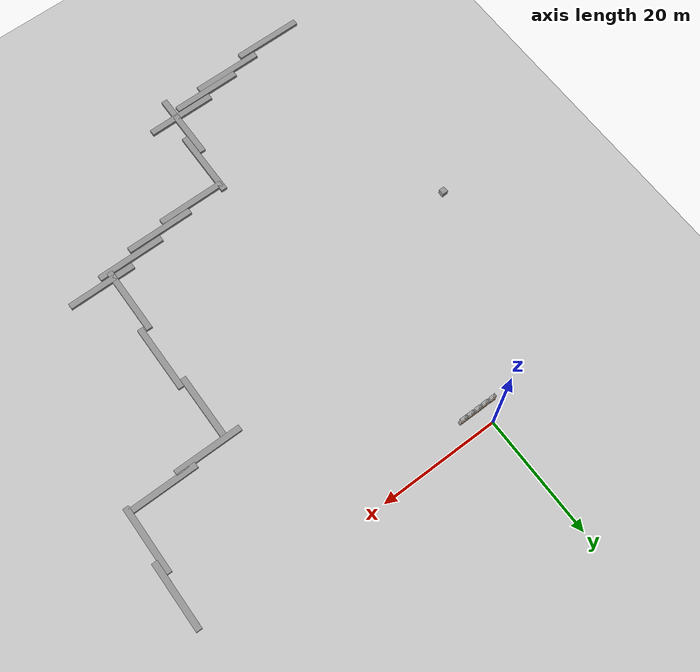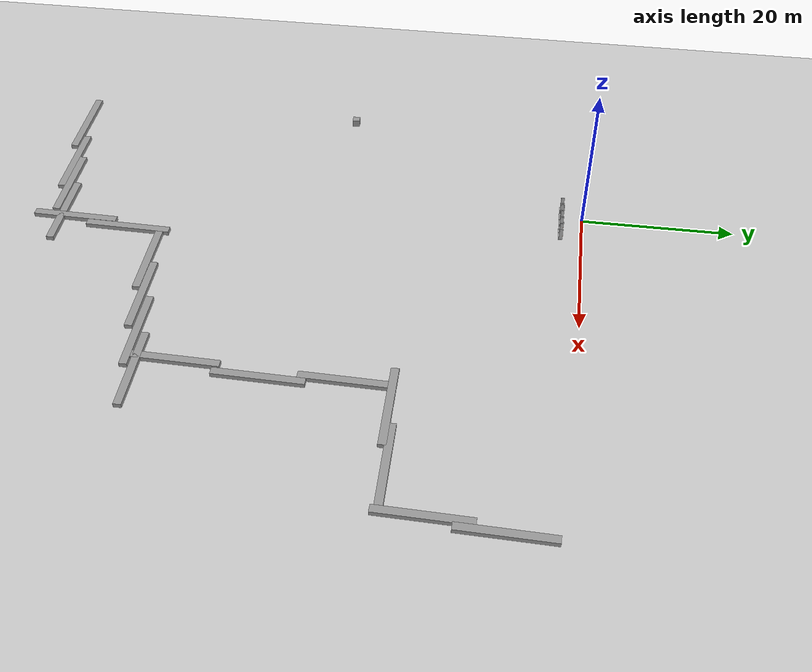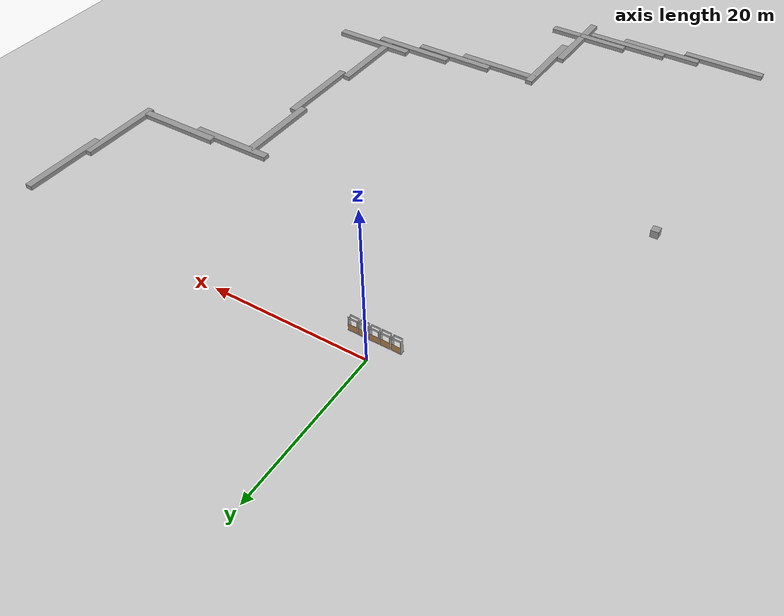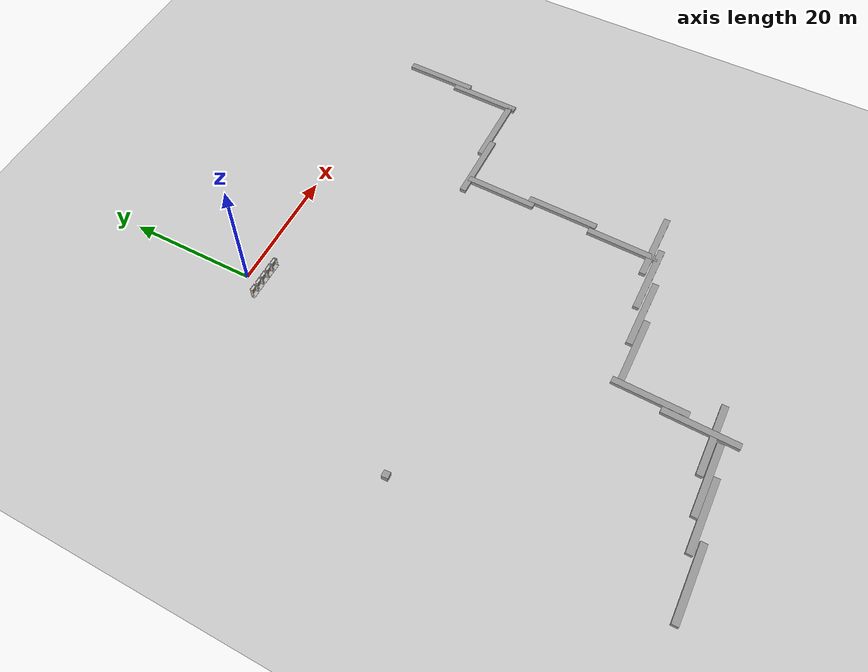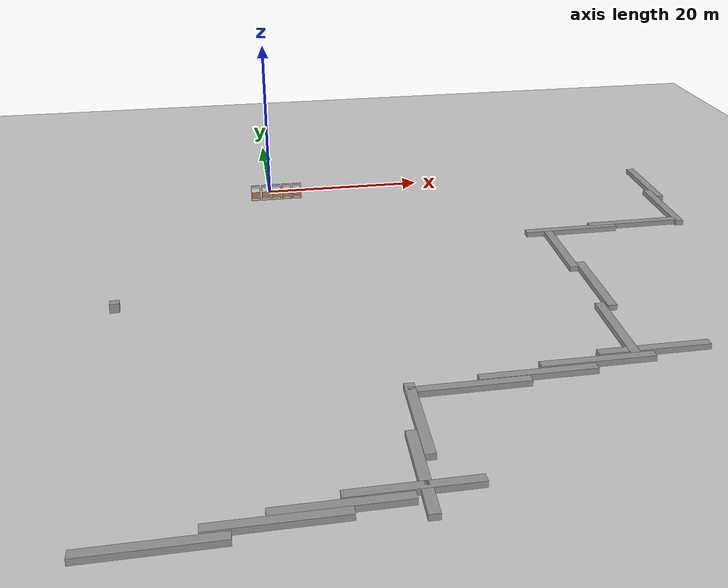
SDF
<sdf version="1.6">
 <world name="default">
  <model name="ground_plane">
   <static>1</static>
   <link name="link">
    <collision name="collision">
     <geometry><plane><normal>0 0 1</normal><size>100 100</size></plane></geometry>
     <surface><friction><ode><mu>100</mu><mu2>50</mu2></ode></friction></surface>
    </collision>
    <visual name="visual">
     <cast_shadows>0</cast_shadows>
     <geometry><plane><normal>0 0 1</normal><size>100 100</size></plane></geometry>
     <material>
      <script><uri>file://media/materials/scripts/gazebo.material</uri><name>Gazebo/Grey</name></script>
     </material>
    </visual>
   </link>
  </model>
  <model name="frc2016_drawbridge">
   <link name="base">
    <inertial>
     <mass>10</mass>
     <pose>0 0 1 0 -0 0</pose>
     <inertia><ixx>3.64907</ixx><ixy>0</ixy><ixz>0</ixz><iyy>4.67075</iyy><iyz>0</iyz><izz>1.66649</izz></inertia>
    </inertial>
    <visual name="platform">
     <pose>0 0 0.0425 0 -0 0</pose>
     <geometry><box><size>1.27 0.5969 0.085</size></box></geometry>
    </visual>
    <collision name="platform">
     <pose>0 0 0.0425 0 -0 0</pose>
     <geometry><box><size>1.27 0.5969 0.085</size></box></geometry>
    </collision>
    <visual name="right_wall">
     <pose>0.55879 0.04444 0.889 0 -0 0</pose>
     <geometry><box><size>0.05715 0.45698 1.77165</size></box></geometry>
    </visual>
    <collision name="right_wall">
     <pose>0.55879 0.04444 0.889 0 -0 0</pose>
     <geometry><box><size>0.05715 0.45698 1.77165</size></box></geometry>
    </collision>
    <visual name="left_wall">
     <pose>-0.55879 0.04444 0.889 0 -0 0</pose>
     <geometry><box><size>0.05715 0.45698 1.77165</size></box></geometry>
    </visual>
    <collision name="left_wall">
     <pose>-0.55879 0.04444 0.889 0 -0 0</pose>
     <geometry><box><size>0.05715 0.45698 1.77165</size></box></geometry>
    </collision>
    <visual name="front_upper_wall">
     <pose>0 0.27611 1.84286 0 -0 0</pose>
     <geometry><box><size>1.1557 0.006347 0.254</size></box></geometry>
    </visual>
    <collision name="front_upper_wall">
     <pose>0 0.27611 1.84286 0 -0 0</pose>
     <geometry><box><size>1.1557 0.006347 0.254</size></box></geometry>
    </collision>
    <visual name="back_upper_wall">
     <pose>0 -0.18722 1.84286 0 -0 0</pose>
     <geometry><box><size>1.1557 0.006347 0.254</size></box></geometry>
    </visual>
    <collision name="back_upper_wall">
     <pose>0 -0.18722 1.84286 0 -0 0</pose>
     <geometry><box><size>1.1557 0.006347 0.254</size></box></geometry>
    </collision>
   </link>
   <link name="bridge">
    <pose>0 0.28245 0.50577 0 -0 0</pose>
    <inertial>
     <mass>2</mass>
     <pose>0 -0.28245 -0.50577 0 -0 0</pose>
     <inertia>
      <ixx>0.139361</ixx>
      <ixy>0</ixy>
      <ixz>0</ixz>
      <iyy>0.357088</iyy>
      <iyz>0</iyz>
      <izz>0.217741</izz>
     </inertia>
    </inertial>
    <visual name="visual">
     <geometry><box><size>1.14298 0.006347 0.9144</size></box></geometry>
     <material><script><name>Gazebo/WoodFloor</name><uri>__default__</uri></script></material>
    </visual>
    <collision name="collision"><geometry><box><size>1.14298 0.006347 0.9144</size></box></geometry></collision>
   </link>
   <joint name="bridge_joint" type="revolute">
    <pose>0 0 -0.4172 0 -0 0</pose>
    <parent>base</parent>
    <child>bridge</child>
    <axis>
     <xyz>1 0 0</xyz>
     <limit><lower>-2</lower><upper>0</upper></limit>
     <use_parent_model_frame>0</use_parent_model_frame>
     <dynamics><spring_reference>0</spring_reference><spring_stiffness>0</spring_stiffness></dynamics>
    </axis>
   </joint>
   <pose>-1.96364 -2.76284 -3e-06 -1e-06 -4e-06 -0.011689</pose>
  </model>
  <model name="frc2016_drawbridge_clone_0">
   <link name="base">
    <inertial>
     <mass>10</mass>
     <pose>0 0 1 0 -0 0</pose>
     <inertia><ixx>3.64907</ixx><ixy>0</ixy><ixz>0</ixz><iyy>4.67075</iyy><iyz>0</iyz><izz>1.66649</izz></inertia>
    </inertial>
    <visual name="platform">
     <pose>0 0 0.0425 0 -0 0</pose>
     <geometry><box><size>1.27 0.5969 0.085</size></box></geometry>
    </visual>
    <collision name="platform">
     <pose>0 0 0.0425 0 -0 0</pose>
     <geometry><box><size>1.27 0.5969 0.085</size></box></geometry>
    </collision>
    <visual name="right_wall">
     <pose>0.55879 0.04444 0.889 0 -0 0</pose>
     <geometry><box><size>0.05715 0.45698 1.77165</size></box></geometry>
    </visual>
    <collision name="right_wall">
     <pose>0.55879 0.04444 0.889 0 -0 0</pose>
     <geometry><box><size>0.05715 0.45698 1.77165</size></box></geometry>
    </collision>
    <visual name="left_wall">
     <pose>-0.55879 0.04444 0.889 0 -0 0</pose>
     <geometry><box><size>0.05715 0.45698 1.77165</size></box></geometry>
    </visual>
    <collision name="left_wall">
     <pose>-0.55879 0.04444 0.889 0 -0 0</pose>
     <geometry><box><size>0.05715 0.45698 1.77165</size></box></geometry>
    </collision>
    <visual name="front_upper_wall">
     <pose>0 0.27611 1.84286 0 -0 0</pose>
     <geometry><box><size>1.1557 0.006347 0.254</size></box></geometry>
    </visual>
    <collision name="front_upper_wall">
     <pose>0 0.27611 1.84286 0 -0 0</pose>
     <geometry><box><size>1.1557 0.006347 0.254</size></box></geometry>
    </collision>
    <visual name="back_upper_wall">
     <pose>0 -0.18722 1.84286 0 -0 0</pose>
     <geometry><box><size>1.1557 0.006347 0.254</size></box></geometry>
    </visual>
    <collision name="back_upper_wall">
     <pose>0 -0.18722 1.84286 0 -0 0</pose>
     <geometry><box><size>1.1557 0.006347 0.254</size></box></geometry>
    </collision>
   </link>
   <link name="bridge">
    <pose>0 0.28245 0.50577 0 -0 0</pose>
    <inertial>
     <mass>2</mass>
     <pose>0 -0.28245 -0.50577 0 -0 0</pose>
     <inertia>
      <ixx>0.139361</ixx>
      <ixy>0</ixy>
      <ixz>0</ixz>
      <iyy>0.357088</iyy>
      <iyz>0</iyz>
      <izz>0.217741</izz>
     </inertia>
    </inertial>
    <visual name="visual">
     <geometry><box><size>1.14298 0.006347 0.9144</size></box></geometry>
     <material><script><name>Gazebo/WoodFloor</name><uri>__default__</uri></script></material>
    </visual>
    <collision name="collision"><geometry><box><size>1.14298 0.006347 0.9144</size></box></geometry></collision>
   </link>
   <joint name="bridge_joint" type="revolute">
    <pose>0 0 -0.4172 0 -0 0</pose>
    <parent>base</parent>
    <child>bridge</child>
    <axis>
     <xyz>1 0 0</xyz>
     <limit><lower>-2</lower><upper>0</upper></limit>
     <use_parent_model_frame>0</use_parent_model_frame>
     <dynamics><spring_reference>0</spring_reference><spring_stiffness>0</spring_stiffness></dynamics>
    </axis>
   </joint>
   <pose>-0.58277 -2.76867 -3e-06 -3e-06 -4e-06 0.003704</pose>
  </model>
  <model name="frc2016_drawbridge_clone_1">
   <link name="base">
    <inertial>
     <mass>10</mass>
     <pose>0 0 1 0 -0 0</pose>
     <inertia><ixx>3.64907</ixx><ixy>0</ixy><ixz>0</ixz><iyy>4.67075</iyy><iyz>0</iyz><izz>1.66649</izz></inertia>
    </inertial>
    <visual name="platform">
     <pose>0 0 0.0425 0 -0 0</pose>
     <geometry><box><size>1.27 0.5969 0.085</size></box></geometry>
    </visual>
    <collision name="platform">
     <pose>0 0 0.0425 0 -0 0</pose>
     <geometry><box><size>1.27 0.5969 0.085</size></box></geometry>
    </collision>
    <visual name="right_wall">
     <pose>0.55879 0.04444 0.889 0 -0 0</pose>
     <geometry><box><size>0.05715 0.45698 1.77165</size></box></geometry>
    </visual>
    <collision name="right_wall">
     <pose>0.55879 0.04444 0.889 0 -0 0</pose>
     <geometry><box><size>0.05715 0.45698 1.77165</size></box></geometry>
    </collision>
    <visual name="left_wall">
     <pose>-0.55879 0.04444 0.889 0 -0 0</pose>
     <geometry><box><size>0.05715 0.45698 1.77165</size></box></geometry>
    </visual>
    <collision name="left_wall">
     <pose>-0.55879 0.04444 0.889 0 -0 0</pose>
     <geometry><box><size>0.05715 0.45698 1.77165</size></box></geometry>
    </collision>
    <visual name="front_upper_wall">
     <pose>0 0.27611 1.84286 0 -0 0</pose>
     <geometry><box><size>1.1557 0.006347 0.254</size></box></geometry>
    </visual>
    <collision name="front_upper_wall">
     <pose>0 0.27611 1.84286 0 -0 0</pose>
     <geometry><box><size>1.1557 0.006347 0.254</size></box></geometry>
    </collision>
    <visual name="back_upper_wall">
     <pose>0 -0.18722 1.84286 0 -0 0</pose>
     <geometry><box><size>1.1557 0.006347 0.254</size></box></geometry>
    </visual>
    <collision name="back_upper_wall">
     <pose>0 -0.18722 1.84286 0 -0 0</pose>
     <geometry><box><size>1.1557 0.006347 0.254</size></box></geometry>
    </collision>
   </link>
   <link name="bridge">
    <pose>0 0.28245 0.50577 0 -0 0</pose>
    <inertial>
     <mass>2</mass>
     <pose>0 -0.28245 -0.50577 0 -0 0</pose>
     <inertia>
      <ixx>0.139361</ixx>
      <ixy>0</ixy>
      <ixz>0</ixz>
      <iyy>0.357088</iyy>
      <iyz>0</iyz>
      <izz>0.217741</izz>
     </inertia>
    </inertial>
    <visual name="visual">
     <geometry><box><size>1.14298 0.006347 0.9144</size></box></geometry>
     <material><script><name>Gazebo/WoodFloor</name><uri>__default__</uri></script></material>
    </visual>
    <collision name="collision"><geometry><box><size>1.14298 0.006347 0.9144</size></box></geometry></collision>
   </link>
   <joint name="bridge_joint" type="revolute">
    <pose>0 0 -0.4172 0 -0 0</pose>
    <parent>base</parent>
    <child>bridge</child>
    <axis>
     <xyz>1 0 0</xyz>
     <limit><lower>-2</lower><upper>0</upper></limit>
     <use_parent_model_frame>0</use_parent_model_frame>
     <dynamics><spring_reference>0</spring_reference><spring_stiffness>0</spring_stiffness></dynamics>
    </axis>
   </joint>
   <pose>0.751563 -2.76216 -3e-06 -2e-06 -4e-06 -0.003048</pose>
  </model>
  <model name="frc2016_drawbridge_clone_2">
   <link name="base">
    <inertial>
     <mass>10</mass>
     <pose>0 0 1 0 -0 0</pose>
     <inertia><ixx>3.64907</ixx><ixy>0</ixy><ixz>0</ixz><iyy>4.67075</iyy><iyz>0</iyz><izz>1.66649</izz></inertia>
    </inertial>
    <visual name="platform">
     <pose>0 0 0.0425 0 -0 0</pose>
     <geometry><box><size>1.27 0.5969 0.085</size></box></geometry>
    </visual>
    <collision name="platform">
     <pose>0 0 0.0425 0 -0 0</pose>
     <geometry><box><size>1.27 0.5969 0.085</size></box></geometry>
    </collision>
    <visual name="right_wall">
     <pose>0.55879 0.04444 0.889 0 -0 0</pose>
     <geometry><box><size>0.05715 0.45698 1.77165</size></box></geometry>
    </visual>
    <collision name="right_wall">
     <pose>0.55879 0.04444 0.889 0 -0 0</pose>
     <geometry><box><size>0.05715 0.45698 1.77165</size></box></geometry>
    </collision>
    <visual name="left_wall">
     <pose>-0.55879 0.04444 0.889 0 -0 0</pose>
     <geometry><box><size>0.05715 0.45698 1.77165</size></box></geometry>
    </visual>
    <collision name="left_wall">
     <pose>-0.55879 0.04444 0.889 0 -0 0</pose>
     <geometry><box><size>0.05715 0.45698 1.77165</size></box></geometry>
    </collision>
    <visual name="front_upper_wall">
     <pose>0 0.27611 1.84286 0 -0 0</pose>
     <geometry><box><size>1.1557 0.006347 0.254</size></box></geometry>
    </visual>
    <collision name="front_upper_wall">
     <pose>0 0.27611 1.84286 0 -0 0</pose>
     <geometry><box><size>1.1557 0.006347 0.254</size></box></geometry>
    </collision>
    <visual name="back_upper_wall">
     <pose>0 -0.18722 1.84286 0 -0 0</pose>
     <geometry><box><size>1.1557 0.006347 0.254</size></box></geometry>
    </visual>
    <collision name="back_upper_wall">
     <pose>0 -0.18722 1.84286 0 -0 0</pose>
     <geometry><box><size>1.1557 0.006347 0.254</size></box></geometry>
    </collision>
   </link>
   <link name="bridge">
    <pose>0 0.28245 0.50577 0 -0 0</pose>
    <inertial>
     <mass>2</mass>
     <pose>0 -0.28245 -0.50577 0 -0 0</pose>
     <inertia>
      <ixx>0.139361</ixx>
      <ixy>0</ixy>
      <ixz>0</ixz>
      <iyy>0.357088</iyy>
      <iyz>0</iyz>
      <izz>0.217741</izz>
     </inertia>
    </inertial>
    <visual name="visual">
     <geometry><box><size>1.14298 0.006347 0.9144</size></box></geometry>
     <material><script><name>Gazebo/WoodFloor</name><uri>__default__</uri></script></material>
    </visual>
    <collision name="collision"><geometry><box><size>1.14298 0.006347 0.9144</size></box></geometry></collision>
   </link>
   <joint name="bridge_joint" type="revolute">
    <pose>0 0 -0.4172 0 -0 0</pose>
    <parent>base</parent>
    <child>bridge</child>
    <axis>
     <xyz>1 0 0</xyz>
     <limit><lower>-2</lower><upper>0</upper></limit>
     <use_parent_model_frame>0</use_parent_model_frame>
     <dynamics><spring_reference>0</spring_reference><spring_stiffness>0</spring_stiffness></dynamics>
    </axis>
   </joint>
   <pose>2.09359 -2.76255 0 0 -0 0.006067</pose>
  </model>
  <model name="frc2016_drawbridge_clone_3">
   <link name="base">
    <inertial>
     <mass>10</mass>
     <pose>0 0 1 0 -0 0</pose>
     <inertia><ixx>3.64907</ixx><ixy>0</ixy><ixz>0</ixz><iyy>4.67075</iyy><iyz>0</iyz><izz>1.66649</izz></inertia>
    </inertial>
    <visual name="platform">
     <pose>0 0 0.0425 0 -0 0</pose>
     <geometry><box><size>1.27 0.5969 0.085</size></box></geometry>
    </visual>
    <collision name="platform">
     <pose>0 0 0.0425 0 -0 0</pose>
     <geometry><box><size>1.27 0.5969 0.085</size></box></geometry>
    </collision>
    <visual name="right_wall">
     <pose>0.55879 0.04444 0.889 0 -0 0</pose>
     <geometry><box><size>0.05715 0.45698 1.77165</size></box></geometry>
    </visual>
    <collision name="right_wall">
     <pose>0.55879 0.04444 0.889 0 -0 0</pose>
     <geometry><box><size>0.05715 0.45698 1.77165</size></box></geometry>
    </collision>
    <visual name="left_wall">
     <pose>-0.55879 0.04444 0.889 0 -0 0</pose>
     <geometry><box><size>0.05715 0.45698 1.77165</size></box></geometry>
    </visual>
    <collision name="left_wall">
     <pose>-0.55879 0.04444 0.889 0 -0 0</pose>
     <geometry><box><size>0.05715 0.45698 1.77165</size></box></geometry>
    </collision>
    <visual name="front_upper_wall">
     <pose>0 0.27611 1.84286 0 -0 0</pose>
     <geometry><box><size>1.1557 0.006347 0.254</size></box></geometry>
    </visual>
    <collision name="front_upper_wall">
     <pose>0 0.27611 1.84286 0 -0 0</pose>
     <geometry><box><size>1.1557 0.006347 0.254</size></box></geometry>
    </collision>
    <visual name="back_upper_wall">
     <pose>0 -0.18722 1.84286 0 -0 0</pose>
     <geometry><box><size>1.1557 0.006347 0.254</size></box></geometry>
    </visual>
    <collision name="back_upper_wall">
     <pose>0 -0.18722 1.84286 0 -0 0</pose>
     <geometry><box><size>1.1557 0.006347 0.254</size></box></geometry>
    </collision>
   </link>
   <link name="bridge">
    <pose>0 0.28245 0.50577 0 -0 0</pose>
    <inertial>
     <mass>2</mass>
     <pose>0 -0.28245 -0.50577 0 -0 0</pose>
     <inertia>
      <ixx>0.139361</ixx>
      <ixy>0</ixy>
      <ixz>0</ixz>
      <iyy>0.357088</iyy>
      <iyz>0</iyz>
      <izz>0.217741</izz>
     </inertia>
    </inertial>
    <visual name="visual">
     <geometry><box><size>1.14298 0.006347 0.9144</size></box></geometry>
     <material><script><name>Gazebo/WoodFloor</name><uri>__default__</uri></script></material>
    </visual>
    <collision name="collision"><geometry><box><size>1.14298 0.006347 0.9144</size></box></geometry></collision>
   </link>
   <joint name="bridge_joint" type="revolute">
    <pose>0 0 -0.4172 0 -0 0</pose>
    <parent>base</parent>
    <child>bridge</child>
    <axis>
     <xyz>1 0 0</xyz>
     <limit><lower>-2</lower><upper>0</upper></limit>
     <use_parent_model_frame>0</use_parent_model_frame>
     <dynamics><spring_reference>0</spring_reference><spring_stiffness>0</spring_stiffness></dynamics>
    </axis>
   </joint>
   <pose>3.4132 -2.77332 0 0 0 -0.005096</pose>
  </model>
  <model name="unit_box_0_clone_14_clone_0_clone">
   <pose>-17.7844 -33.4735 0.509209 -0.000175 -8e-05 0.023709</pose>
   <link name="link">
    <inertial>
     <mass>1</mass>
     <inertia>
      <ixx>0.166667</ixx>
      <ixy>0</ixy>
      <ixz>0</ixz>
      <iyy>0.166667</iyy>
      <iyz>0</iyz>
      <izz>0.166667</izz>
     </inertia>
    </inertial>
    <collision name="collision"><geometry><box><size>1 1 1</size></box></geometry></collision>
    <visual name="visual">
     <geometry><box><size>1 1 1</size></box></geometry>
     <material>
      <script><name>Gazebo/Grey</name><uri>file://media/materials/scripts/gazebo.material</uri></script>
     </material>
    </visual>
   </link>
  </model>
  <model name="unit_box_0_static_clone_7">
   <link name="link">
    <inertial>
     <mass>11.3696</mass>
     <inertia><ixx>1.89495</ixx><ixy>0</ixy><ixz>0</ixz><iyy>123.426</iyy><iyz>0</iyz><izz>123.426</izz></inertia>
    </inertial>
    <kinematic>1</kinematic>
    <visual name="visual">
     <geometry><box><size>11.3696 1 1</size></box></geometry>
     <material>
      <script><name>Gazebo/Grey</name><uri>file://media/materials/scripts/gazebo.material</uri></script>
      <ambient>0.3 0.3 0.3 1</ambient>
      <diffuse>0.7 0.7 0.7 1</diffuse>
      <specular>0.01 0.01 0.01 1</specular>
      <emissive>0 0 0 1</emissive>
     </material>
    </visual>
    <collision name="collision">
     <geometry><box><size>11.3696 1 1</size></box></geometry>
     <surface>
      <friction>
       <ode><mu>1</mu><mu2>1</mu2><fdir1>0 0 0</fdir1><slip1>0</slip1><slip2>0</slip2></ode>
       <torsional>
        <coefficient>1</coefficient>
        <patch_radius>0</patch_radius>
        <surface_radius>0</surface_radius>
        <use_patch_radius>1</use_patch_radius>
        <ode><slip>0</slip></ode>
       </torsional>
      </friction>
      <bounce><restitution_coefficient>0</restitution_coefficient><threshold>1e+06</threshold></bounce>
      <contact>
       <collide_without_contact>0</collide_without_contact>
       <collide_without_contact_bitmask>1</collide_without_contact_bitmask>
       <collide_bitmask>1</collide_bitmask>
       <ode>
        <soft_cfm>0</soft_cfm>
        <soft_erp>0.2</soft_erp>
        <kp>1e+13</kp>
        <kd>1</kd>
        <max_vel>0.01</max_vel>
        <min_depth>0</min_depth>
       </ode>
       <bullet>
        <split_impulse>1</split_impulse>
        <split_impulse_penetration_threshold>-0.01</split_impulse_penetration_threshold>
        <soft_cfm>0</soft_cfm>
        <soft_erp>0.2</soft_erp>
        <kp>1e+13</kp>
        <kd>1</kd>
       </bullet>
      </contact>
     </surface>
    </collision>
   </link>
   <static>1</static>
   <pose>-12.4313 -73.084 0 0 -0 0</pose>
  </model>
  <model name="unit_box_0_static_clone_8">
   <link name="link">
    <inertial>
     <mass>11.3696</mass>
     <inertia><ixx>1.89495</ixx><ixy>0</ixy><ixz>0</ixz><iyy>123.426</iyy><iyz>0</iyz><izz>123.426</izz></inertia>
    </inertial>
    <kinematic>1</kinematic>
    <visual name="visual">
     <geometry><box><size>11.3696 1 1</size></box></geometry>
     <material>
      <script><name>Gazebo/Grey</name><uri>file://media/materials/scripts/gazebo.material</uri></script>
      <ambient>0.3 0.3 0.3 1</ambient>
      <diffuse>0.7 0.7 0.7 1</diffuse>
      <specular>0.01 0.01 0.01 1</specular>
      <emissive>0 0 0 1</emissive>
     </material>
    </visual>
    <collision name="collision">
     <geometry><box><size>11.3696 1 1</size></box></geometry>
     <surface>
      <friction>
       <ode><mu>1</mu><mu2>1</mu2><fdir1>0 0 0</fdir1><slip1>0</slip1><slip2>0</slip2></ode>
       <torsional>
        <coefficient>1</coefficient>
        <patch_radius>0</patch_radius>
        <surface_radius>0</surface_radius>
        <use_patch_radius>1</use_patch_radius>
        <ode><slip>0</slip></ode>
       </torsional>
      </friction>
      <bounce><restitution_coefficient>0</restitution_coefficient><threshold>1e+06</threshold></bounce>
      <contact>
       <collide_without_contact>0</collide_without_contact>
       <collide_without_contact_bitmask>1</collide_without_contact_bitmask>
       <collide_bitmask>1</collide_bitmask>
       <ode>
        <soft_cfm>0</soft_cfm>
        <soft_erp>0.2</soft_erp>
        <kp>1e+13</kp>
        <kd>1</kd>
        <max_vel>0.01</max_vel>
        <min_depth>0</min_depth>
       </ode>
       <bullet>
        <split_impulse>1</split_impulse>
        <split_impulse_penetration_threshold>-0.01</split_impulse_penetration_threshold>
        <soft_cfm>0</soft_cfm>
        <soft_erp>0.2</soft_erp>
        <kp>1e+13</kp>
        <kd>1</kd>
       </bullet>
      </contact>
     </surface>
    </collision>
   </link>
   <static>1</static>
   <pose>-3.41606 -71.867 0 0 -0 0</pose>
  </model>
  <model name="unit_box_0_static_clone_9">
   <link name="link">
    <inertial>
     <mass>11.3696</mass>
     <inertia><ixx>1.89495</ixx><ixy>0</ixy><ixz>0</ixz><iyy>123.426</iyy><iyz>0</iyz><izz>123.426</izz></inertia>
    </inertial>
    <kinematic>1</kinematic>
    <visual name="visual">
     <geometry><box><size>11.3696 1 1</size></box></geometry>
     <material>
      <script><name>Gazebo/Grey</name><uri>file://media/materials/scripts/gazebo.material</uri></script>
      <ambient>0.3 0.3 0.3 1</ambient>
      <diffuse>0.7 0.7 0.7 1</diffuse>
      <specular>0.01 0.01 0.01 1</specular>
      <emissive>0 0 0 1</emissive>
     </material>
    </visual>
    <collision name="collision">
     <geometry><box><size>11.3696 1 1</size></box></geometry>
     <surface>
      <friction>
       <ode><mu>1</mu><mu2>1</mu2><fdir1>0 0 0</fdir1><slip1>0</slip1><slip2>0</slip2></ode>
       <torsional>
        <coefficient>1</coefficient>
        <patch_radius>0</patch_radius>
        <surface_radius>0</surface_radius>
        <use_patch_radius>1</use_patch_radius>
        <ode><slip>0</slip></ode>
       </torsional>
      </friction>
      <bounce><restitution_coefficient>0</restitution_coefficient><threshold>1e+06</threshold></bounce>
      <contact>
       <collide_without_contact>0</collide_without_contact>
       <collide_without_contact_bitmask>1</collide_without_contact_bitmask>
       <collide_bitmask>1</collide_bitmask>
       <ode>
        <soft_cfm>0</soft_cfm>
        <soft_erp>0.2</soft_erp>
        <kp>1e+13</kp>
        <kd>1</kd>
        <max_vel>0.01</max_vel>
        <min_depth>0</min_depth>
       </ode>
       <bullet>
        <split_impulse>1</split_impulse>
        <split_impulse_penetration_threshold>-0.01</split_impulse_penetration_threshold>
        <soft_cfm>0</soft_cfm>
        <soft_erp>0.2</soft_erp>
        <kp>1e+13</kp>
        <kd>1</kd>
       </bullet>
      </contact>
     </surface>
    </collision>
   </link>
   <static>1</static>
   <pose>1.44335 -70.8928 0 0 -0 0</pose>
  </model>
  <model name="unit_box_0_static_clone_10">
   <link name="link">
    <inertial>
     <mass>11.3696</mass>
     <inertia><ixx>1.89495</ixx><ixy>0</ixy><ixz>0</ixz><iyy>123.426</iyy><iyz>0</iyz><izz>123.426</izz></inertia>
    </inertial>
    <kinematic>1</kinematic>
    <visual name="visual">
     <geometry><box><size>11.3696 1 1</size></box></geometry>
     <material>
      <script><name>Gazebo/Grey</name><uri>file://media/materials/scripts/gazebo.material</uri></script>
      <ambient>0.3 0.3 0.3 1</ambient>
      <diffuse>0.7 0.7 0.7 1</diffuse>
      <specular>0.01 0.01 0.01 1</specular>
      <emissive>0 0 0 1</emissive>
     </material>
    </visual>
    <collision name="collision">
     <geometry><box><size>11.3696 1 1</size></box></geometry>
     <surface>
      <friction>
       <ode><mu>1</mu><mu2>1</mu2><fdir1>0 0 0</fdir1><slip1>0</slip1><slip2>0</slip2></ode>
       <torsional>
        <coefficient>1</coefficient>
        <patch_radius>0</patch_radius>
        <surface_radius>0</surface_radius>
        <use_patch_radius>1</use_patch_radius>
        <ode><slip>0</slip></ode>
       </torsional>
      </friction>
      <bounce><restitution_coefficient>0</restitution_coefficient><threshold>1e+06</threshold></bounce>
      <contact>
       <collide_without_contact>0</collide_without_contact>
       <collide_without_contact_bitmask>1</collide_without_contact_bitmask>
       <collide_bitmask>1</collide_bitmask>
       <ode>
        <soft_cfm>0</soft_cfm>
        <soft_erp>0.2</soft_erp>
        <kp>1e+13</kp>
        <kd>1</kd>
        <max_vel>0.01</max_vel>
        <min_depth>0</min_depth>
       </ode>
       <bullet>
        <split_impulse>1</split_impulse>
        <split_impulse_penetration_threshold>-0.01</split_impulse_penetration_threshold>
        <soft_cfm>0</soft_cfm>
        <soft_erp>0.2</soft_erp>
        <kp>1e+13</kp>
        <kd>1</kd>
       </bullet>
      </contact>
     </surface>
    </collision>
   </link>
   <static>1</static>
   <pose>7.15228 -69.7562 0 0 -0 0</pose>
  </model>
  <model name="unit_box_0_static_clone_11">
   <link name="link">
    <inertial>
     <mass>11.3696</mass>
     <inertia><ixx>1.89495</ixx><ixy>0</ixy><ixz>0</ixz><iyy>123.426</iyy><iyz>0</iyz><izz>123.426</izz></inertia>
    </inertial>
    <kinematic>1</kinematic>
    <visual name="visual">
     <geometry><box><size>11.3696 1 1</size></box></geometry>
     <material>
      <script><name>Gazebo/Grey</name><uri>file://media/materials/scripts/gazebo.material</uri></script>
      <ambient>0.3 0.3 0.3 1</ambient>
      <diffuse>0.7 0.7 0.7 1</diffuse>
      <specular>0.01 0.01 0.01 1</specular>
      <emissive>0 0 0 1</emissive>
     </material>
    </visual>
    <collision name="collision">
     <geometry><box><size>11.3696 1 1</size></box></geometry>
     <surface>
      <friction>
       <ode><mu>1</mu><mu2>1</mu2><fdir1>0 0 0</fdir1><slip1>0</slip1><slip2>0</slip2></ode>
       <torsional>
        <coefficient>1</coefficient>
        <patch_radius>0</patch_radius>
        <surface_radius>0</surface_radius>
        <use_patch_radius>1</use_patch_radius>
        <ode><slip>0</slip></ode>
       </torsional>
      </friction>
      <bounce><restitution_coefficient>0</restitution_coefficient><threshold>1e+06</threshold></bounce>
      <contact>
       <collide_without_contact>0</collide_without_contact>
       <collide_without_contact_bitmask>1</collide_without_contact_bitmask>
       <collide_bitmask>1</collide_bitmask>
       <ode>
        <soft_cfm>0</soft_cfm>
        <soft_erp>0.2</soft_erp>
        <kp>1e+13</kp>
        <kd>1</kd>
        <max_vel>0.01</max_vel>
        <min_depth>0</min_depth>
       </ode>
       <bullet>
        <split_impulse>1</split_impulse>
        <split_impulse_penetration_threshold>-0.01</split_impulse_penetration_threshold>
        <soft_cfm>0</soft_cfm>
        <soft_erp>0.2</soft_erp>
        <kp>1e+13</kp>
        <kd>1</kd>
       </bullet>
      </contact>
     </surface>
    </collision>
   </link>
   <static>1</static>
   <pose>35.508 -21.3768 0 0 -0 0</pose>
  </model>
  <model name="unit_box_0_static_clone_12">
   <link name="link">
    <inertial>
     <mass>11.3696</mass>
     <inertia><ixx>1.89495</ixx><ixy>0</ixy><ixz>0</ixz><iyy>123.426</iyy><iyz>0</iyz><izz>123.426</izz></inertia>
    </inertial>
    <kinematic>1</kinematic>
    <visual name="visual">
     <geometry><box><size>11.3696 1 1</size></box></geometry>
     <material>
      <script><name>Gazebo/Grey</name><uri>file://media/materials/scripts/gazebo.material</uri></script>
      <ambient>0.3 0.3 0.3 1</ambient>
      <diffuse>0.7 0.7 0.7 1</diffuse>
      <specular>0.01 0.01 0.01 1</specular>
      <emissive>0 0 0 1</emissive>
     </material>
    </visual>
    <collision name="collision">
     <geometry><box><size>11.3696 1 1</size></box></geometry>
     <surface>
      <friction>
       <ode><mu>1</mu><mu2>1</mu2><fdir1>0 0 0</fdir1><slip1>0</slip1><slip2>0</slip2></ode>
       <torsional>
        <coefficient>1</coefficient>
        <patch_radius>0</patch_radius>
        <surface_radius>0</surface_radius>
        <use_patch_radius>1</use_patch_radius>
        <ode><slip>0</slip></ode>
       </torsional>
      </friction>
      <bounce><restitution_coefficient>0</restitution_coefficient><threshold>1e+06</threshold></bounce>
      <contact>
       <collide_without_contact>0</collide_without_contact>
       <collide_without_contact_bitmask>1</collide_without_contact_bitmask>
       <collide_bitmask>1</collide_bitmask>
       <ode>
        <soft_cfm>0</soft_cfm>
        <soft_erp>0.2</soft_erp>
        <kp>1e+13</kp>
        <kd>1</kd>
        <max_vel>0.01</max_vel>
        <min_depth>0</min_depth>
       </ode>
       <bullet>
        <split_impulse>1</split_impulse>
        <split_impulse_penetration_threshold>-0.01</split_impulse_penetration_threshold>
        <soft_cfm>0</soft_cfm>
        <soft_erp>0.2</soft_erp>
        <kp>1e+13</kp>
        <kd>1</kd>
       </bullet>
      </contact>
     </surface>
    </collision>
   </link>
   <static>1</static>
   <pose>43.7314 -20.6313 0 0 -0 0</pose>
  </model>
  <model name="unit_box_0_static_clone_13">
   <link name="link">
    <inertial>
     <mass>11.3696</mass>
     <inertia><ixx>1.89495</ixx><ixy>0</ixy><ixz>0</ixz><iyy>123.426</iyy><iyz>0</iyz><izz>123.426</izz></inertia>
    </inertial>
    <kinematic>1</kinematic>
    <visual name="visual">
     <geometry><box><size>11.3696 1 1</size></box></geometry>
     <material>
      <script><name>Gazebo/Grey</name><uri>file://media/materials/scripts/gazebo.material</uri></script>
      <ambient>0.3 0.3 0.3 1</ambient>
      <diffuse>0.7 0.7 0.7 1</diffuse>
      <specular>0.01 0.01 0.01 1</specular>
      <emissive>0 0 0 1</emissive>
     </material>
    </visual>
    <collision name="collision">
     <geometry><box><size>11.3696 1 1</size></box></geometry>
     <surface>
      <friction>
       <ode><mu>1</mu><mu2>1</mu2><fdir1>0 0 0</fdir1><slip1>0</slip1><slip2>0</slip2></ode>
       <torsional>
        <coefficient>1</coefficient>
        <patch_radius>0</patch_radius>
        <surface_radius>0</surface_radius>
        <use_patch_radius>1</use_patch_radius>
        <ode><slip>0</slip></ode>
       </torsional>
      </friction>
      <bounce><restitution_coefficient>0</restitution_coefficient><threshold>1e+06</threshold></bounce>
      <contact>
       <collide_without_contact>0</collide_without_contact>
       <collide_without_contact_bitmask>1</collide_without_contact_bitmask>
       <collide_bitmask>1</collide_bitmask>
       <ode>
        <soft_cfm>0</soft_cfm>
        <soft_erp>0.2</soft_erp>
        <kp>1e+13</kp>
        <kd>1</kd>
        <max_vel>0.01</max_vel>
        <min_depth>0</min_depth>
       </ode>
       <bullet>
        <split_impulse>1</split_impulse>
        <split_impulse_penetration_threshold>-0.01</split_impulse_penetration_threshold>
        <soft_cfm>0</soft_cfm>
        <soft_erp>0.2</soft_erp>
        <kp>1e+13</kp>
        <kd>1</kd>
       </bullet>
      </contact>
     </surface>
    </collision>
   </link>
   <static>1</static>
   <pose>14.8401 -55.6737 0 0 -0 0</pose>
  </model>
  <model name="unit_box_0_static_clone_14">
   <link name="link">
    <inertial>
     <mass>11.3696</mass>
     <inertia><ixx>1.89495</ixx><ixy>0</ixy><ixz>0</ixz><iyy>123.426</iyy><iyz>0</iyz><izz>123.426</izz></inertia>
    </inertial>
    <kinematic>1</kinematic>
    <visual name="visual">
     <geometry><box><size>11.3696 1 1</size></box></geometry>
     <material>
      <script><name>Gazebo/Grey</name><uri>file://media/materials/scripts/gazebo.material</uri></script>
      <ambient>0.3 0.3 0.3 1</ambient>
      <diffuse>0.7 0.7 0.7 1</diffuse>
      <specular>0.01 0.01 0.01 1</specular>
      <emissive>0 0 0 1</emissive>
     </material>
    </visual>
    <collision name="collision">
     <geometry><box><size>11.3696 1 1</size></box></geometry>
     <surface>
      <friction>
       <ode><mu>1</mu><mu2>1</mu2><fdir1>0 0 0</fdir1><slip1>0</slip1><slip2>0</slip2></ode>
       <torsional>
        <coefficient>1</coefficient>
        <patch_radius>0</patch_radius>
        <surface_radius>0</surface_radius>
        <use_patch_radius>1</use_patch_radius>
        <ode><slip>0</slip></ode>
       </torsional>
      </friction>
      <bounce><restitution_coefficient>0</restitution_coefficient><threshold>1e+06</threshold></bounce>
      <contact>
       <collide_without_contact>0</collide_without_contact>
       <collide_without_contact_bitmask>1</collide_without_contact_bitmask>
       <collide_bitmask>1</collide_bitmask>
       <ode>
        <soft_cfm>0</soft_cfm>
        <soft_erp>0.2</soft_erp>
        <kp>1e+13</kp>
        <kd>1</kd>
        <max_vel>0.01</max_vel>
        <min_depth>0</min_depth>
       </ode>
       <bullet>
        <split_impulse>1</split_impulse>
        <split_impulse_penetration_threshold>-0.01</split_impulse_penetration_threshold>
        <soft_cfm>0</soft_cfm>
        <soft_erp>0.2</soft_erp>
        <kp>1e+13</kp>
        <kd>1</kd>
       </bullet>
      </contact>
     </surface>
    </collision>
   </link>
   <static>1</static>
   <pose>21.499 -54.6347 0 0 -0 0</pose>
  </model>
  <model name="unit_box_0_static_clone_15">
   <link name="link">
    <inertial>
     <mass>11.3696</mass>
     <inertia><ixx>1.89495</ixx><ixy>0</ixy><ixz>0</ixz><iyy>123.426</iyy><iyz>0</iyz><izz>123.426</izz></inertia>
    </inertial>
    <kinematic>1</kinematic>
    <visual name="visual">
     <geometry><box><size>11.3696 1 1</size></box></geometry>
     <material>
      <script><name>Gazebo/Grey</name><uri>file://media/materials/scripts/gazebo.material</uri></script>
      <ambient>0.3 0.3 0.3 1</ambient>
      <diffuse>0.7 0.7 0.7 1</diffuse>
      <specular>0.01 0.01 0.01 1</specular>
      <emissive>0 0 0 1</emissive>
     </material>
    </visual>
    <collision name="collision">
     <geometry><box><size>11.3696 1 1</size></box></geometry>
     <surface>
      <friction>
       <ode><mu>1</mu><mu2>1</mu2><fdir1>0 0 0</fdir1><slip1>0</slip1><slip2>0</slip2></ode>
       <torsional>
        <coefficient>1</coefficient>
        <patch_radius>0</patch_radius>
        <surface_radius>0</surface_radius>
        <use_patch_radius>1</use_patch_radius>
        <ode><slip>0</slip></ode>
       </torsional>
      </friction>
      <bounce><restitution_coefficient>0</restitution_coefficient><threshold>1e+06</threshold></bounce>
      <contact>
       <collide_without_contact>0</collide_without_contact>
       <collide_without_contact_bitmask>1</collide_without_contact_bitmask>
       <collide_bitmask>1</collide_bitmask>
       <ode>
        <soft_cfm>0</soft_cfm>
        <soft_erp>0.2</soft_erp>
        <kp>1e+13</kp>
        <kd>1</kd>
        <max_vel>0.01</max_vel>
        <min_depth>0</min_depth>
       </ode>
       <bullet>
        <split_impulse>1</split_impulse>
        <split_impulse_penetration_threshold>-0.01</split_impulse_penetration_threshold>
        <soft_cfm>0</soft_cfm>
        <soft_erp>0.2</soft_erp>
        <kp>1e+13</kp>
        <kd>1</kd>
       </bullet>
      </contact>
     </surface>
    </collision>
   </link>
   <static>1</static>
   <pose>27.6823 -53.4008 0 0 -0 0</pose>
  </model>
  <model name="unit_box_0_static_clone_16">
   <link name="link">
    <inertial>
     <mass>11.3696</mass>
     <inertia><ixx>1.89495</ixx><ixy>0</ixy><ixz>0</ixz><iyy>123.426</iyy><iyz>0</iyz><izz>123.426</izz></inertia>
    </inertial>
    <kinematic>1</kinematic>
    <visual name="visual">
     <geometry><box><size>11.3696 1 1</size></box></geometry>
     <material>
      <script><name>Gazebo/Grey</name><uri>file://media/materials/scripts/gazebo.material</uri></script>
      <ambient>0.3 0.3 0.3 1</ambient>
      <diffuse>0.7 0.7 0.7 1</diffuse>
      <specular>0.01 0.01 0.01 1</specular>
      <emissive>0 0 0 1</emissive>
     </material>
    </visual>
    <collision name="collision">
     <geometry><box><size>11.3696 1 1</size></box></geometry>
     <surface>
      <friction>
       <ode><mu>1</mu><mu2>1</mu2><fdir1>0 0 0</fdir1><slip1>0</slip1><slip2>0</slip2></ode>
       <torsional>
        <coefficient>1</coefficient>
        <patch_radius>0</patch_radius>
        <surface_radius>0</surface_radius>
        <use_patch_radius>1</use_patch_radius>
        <ode><slip>0</slip></ode>
       </torsional>
      </friction>
      <bounce><restitution_coefficient>0</restitution_coefficient><threshold>1e+06</threshold></bounce>
      <contact>
       <collide_without_contact>0</collide_without_contact>
       <collide_without_contact_bitmask>1</collide_without_contact_bitmask>
       <collide_bitmask>1</collide_bitmask>
       <ode>
        <soft_cfm>0</soft_cfm>
        <soft_erp>0.2</soft_erp>
        <kp>1e+13</kp>
        <kd>1</kd>
        <max_vel>0.01</max_vel>
        <min_depth>0</min_depth>
       </ode>
       <bullet>
        <split_impulse>1</split_impulse>
        <split_impulse_penetration_threshold>-0.01</split_impulse_penetration_threshold>
        <soft_cfm>0</soft_cfm>
        <soft_erp>0.2</soft_erp>
        <kp>1e+13</kp>
        <kd>1</kd>
       </bullet>
      </contact>
     </surface>
    </collision>
   </link>
   <static>1</static>
   <pose>33.7546 -52.1669 0 0 -0 0</pose>
  </model>
  <model name="unit_box_0_static_clone_35_clone_13">
   <link name="link">
    <inertial>
     <mass>11.3696</mass>
     <inertia><ixx>1.89495</ixx><ixy>0</ixy><ixz>0</ixz><iyy>123.426</iyy><iyz>0</iyz><izz>123.426</izz></inertia>
    </inertial>
    <kinematic>1</kinematic>
    <visual name="visual">
     <geometry><box><size>11.3696 1 1</size></box></geometry>
     <material>
      <script><name>Gazebo/Grey</name><uri>file://media/materials/scripts/gazebo.material</uri></script>
      <ambient>0.3 0.3 0.3 1</ambient>
      <diffuse>0.7 0.7 0.7 1</diffuse>
      <specular>0.01 0.01 0.01 1</specular>
      <emissive>0 0 0 1</emissive>
     </material>
    </visual>
    <collision name="collision">
     <geometry><box><size>11.3696 1 1</size></box></geometry>
     <surface>
      <friction>
       <ode><mu>1</mu><mu2>1</mu2><fdir1>0 0 0</fdir1><slip1>0</slip1><slip2>0</slip2></ode>
       <torsional>
        <coefficient>1</coefficient>
        <patch_radius>0</patch_radius>
        <surface_radius>0</surface_radius>
        <use_patch_radius>1</use_patch_radius>
        <ode><slip>0</slip></ode>
       </torsional>
      </friction>
      <bounce><restitution_coefficient>0</restitution_coefficient><threshold>1e+06</threshold></bounce>
      <contact>
       <collide_without_contact>0</collide_without_contact>
       <collide_without_contact_bitmask>1</collide_without_contact_bitmask>
       <collide_bitmask>1</collide_bitmask>
       <ode>
        <soft_cfm>0</soft_cfm>
        <soft_erp>0.2</soft_erp>
        <kp>1e+13</kp>
        <kd>1</kd>
        <max_vel>0.01</max_vel>
        <min_depth>0</min_depth>
       </ode>
       <bullet>
        <split_impulse>1</split_impulse>
        <split_impulse_penetration_threshold>-0.01</split_impulse_penetration_threshold>
        <soft_cfm>0</soft_cfm>
        <soft_erp>0.2</soft_erp>
        <kp>1e+13</kp>
        <kd>1</kd>
       </bullet>
      </contact>
     </surface>
    </collision>
   </link>
   <static>1</static>
   <pose>50.7562 -7.02107 0 0 0 -1.5917</pose>
  </model>
  <model name="unit_box_0_static_clone_35_clone_14">
   <link name="link">
    <inertial>
     <mass>11.3696</mass>
     <inertia><ixx>1.89495</ixx><ixy>0</ixy><ixz>0</ixz><iyy>123.426</iyy><iyz>0</iyz><izz>123.426</izz></inertia>
    </inertial>
    <kinematic>1</kinematic>
    <visual name="visual">
     <geometry><box><size>11.3696 1 1</size></box></geometry>
     <material>
      <script><name>Gazebo/Grey</name><uri>file://media/materials/scripts/gazebo.material</uri></script>
      <ambient>0.3 0.3 0.3 1</ambient>
      <diffuse>0.7 0.7 0.7 1</diffuse>
      <specular>0.01 0.01 0.01 1</specular>
      <emissive>0 0 0 1</emissive>
     </material>
    </visual>
    <collision name="collision">
     <geometry><box><size>11.3696 1 1</size></box></geometry>
     <surface>
      <friction>
       <ode><mu>1</mu><mu2>1</mu2><fdir1>0 0 0</fdir1><slip1>0</slip1><slip2>0</slip2></ode>
       <torsional>
        <coefficient>1</coefficient>
        <patch_radius>0</patch_radius>
        <surface_radius>0</surface_radius>
        <use_patch_radius>1</use_patch_radius>
        <ode><slip>0</slip></ode>
       </torsional>
      </friction>
      <bounce><restitution_coefficient>0</restitution_coefficient><threshold>1e+06</threshold></bounce>
      <contact>
       <collide_without_contact>0</collide_without_contact>
       <collide_without_contact_bitmask>1</collide_without_contact_bitmask>
       <collide_bitmask>1</collide_bitmask>
       <ode>
        <soft_cfm>0</soft_cfm>
        <soft_erp>0.2</soft_erp>
        <kp>1e+13</kp>
        <kd>1</kd>
        <max_vel>0.01</max_vel>
        <min_depth>0</min_depth>
       </ode>
       <bullet>
        <split_impulse>1</split_impulse>
        <split_impulse_penetration_threshold>-0.01</split_impulse_penetration_threshold>
        <soft_cfm>0</soft_cfm>
        <soft_erp>0.2</soft_erp>
        <kp>1e+13</kp>
        <kd>1</kd>
       </bullet>
      </contact>
     </surface>
    </collision>
   </link>
   <static>1</static>
   <pose>49.7263 -15.8571 0 0 0 -1.5917</pose>
  </model>
  <model name="unit_box_0_static_clone_35_clone_15">
   <link name="link">
    <inertial>
     <mass>11.3696</mass>
     <inertia><ixx>1.89495</ixx><ixy>0</ixy><ixz>0</ixz><iyy>123.426</iyy><iyz>0</iyz><izz>123.426</izz></inertia>
    </inertial>
    <kinematic>1</kinematic>
    <visual name="visual">
     <geometry><box><size>11.3696 1 1</size></box></geometry>
     <material>
      <script><name>Gazebo/Grey</name><uri>file://media/materials/scripts/gazebo.material</uri></script>
      <ambient>0.3 0.3 0.3 1</ambient>
      <diffuse>0.7 0.7 0.7 1</diffuse>
      <specular>0.01 0.01 0.01 1</specular>
      <emissive>0 0 0 1</emissive>
     </material>
    </visual>
    <collision name="collision">
     <geometry><box><size>11.3696 1 1</size></box></geometry>
     <surface>
      <friction>
       <ode><mu>1</mu><mu2>1</mu2><fdir1>0 0 0</fdir1><slip1>0</slip1><slip2>0</slip2></ode>
       <torsional>
        <coefficient>1</coefficient>
        <patch_radius>0</patch_radius>
        <surface_radius>0</surface_radius>
        <use_patch_radius>1</use_patch_radius>
        <ode><slip>0</slip></ode>
       </torsional>
      </friction>
      <bounce><restitution_coefficient>0</restitution_coefficient><threshold>1e+06</threshold></bounce>
      <contact>
       <collide_without_contact>0</collide_without_contact>
       <collide_without_contact_bitmask>1</collide_without_contact_bitmask>
       <collide_bitmask>1</collide_bitmask>
       <ode>
        <soft_cfm>0</soft_cfm>
        <soft_erp>0.2</soft_erp>
        <kp>1e+13</kp>
        <kd>1</kd>
        <max_vel>0.01</max_vel>
        <min_depth>0</min_depth>
       </ode>
       <bullet>
        <split_impulse>1</split_impulse>
        <split_impulse_penetration_threshold>-0.01</split_impulse_penetration_threshold>
        <soft_cfm>0</soft_cfm>
        <soft_erp>0.2</soft_erp>
        <kp>1e+13</kp>
        <kd>1</kd>
       </bullet>
      </contact>
     </surface>
    </collision>
   </link>
   <static>1</static>
   <pose>31.7121 -47.6882 0 0 0 -1.5917</pose>
  </model>
  <model name="unit_box_0_static_clone_35_clone_16">
   <link name="link">
    <inertial>
     <mass>11.3696</mass>
     <inertia><ixx>1.89495</ixx><ixy>0</ixy><ixz>0</ixz><iyy>123.426</iyy><iyz>0</iyz><izz>123.426</izz></inertia>
    </inertial>
    <kinematic>1</kinematic>
    <visual name="visual">
     <geometry><box><size>11.3696 1 1</size></box></geometry>
     <material>
      <script><name>Gazebo/Grey</name><uri>file://media/materials/scripts/gazebo.material</uri></script>
      <ambient>0.3 0.3 0.3 1</ambient>
      <diffuse>0.7 0.7 0.7 1</diffuse>
      <specular>0.01 0.01 0.01 1</specular>
      <emissive>0 0 0 1</emissive>
     </material>
    </visual>
    <collision name="collision">
     <geometry><box><size>11.3696 1 1</size></box></geometry>
     <surface>
      <friction>
       <ode><mu>1</mu><mu2>1</mu2><fdir1>0 0 0</fdir1><slip1>0</slip1><slip2>0</slip2></ode>
       <torsional>
        <coefficient>1</coefficient>
        <patch_radius>0</patch_radius>
        <surface_radius>0</surface_radius>
        <use_patch_radius>1</use_patch_radius>
        <ode><slip>0</slip></ode>
       </torsional>
      </friction>
      <bounce><restitution_coefficient>0</restitution_coefficient><threshold>1e+06</threshold></bounce>
      <contact>
       <collide_without_contact>0</collide_without_contact>
       <collide_without_contact_bitmask>1</collide_without_contact_bitmask>
       <collide_bitmask>1</collide_bitmask>
       <ode>
        <soft_cfm>0</soft_cfm>
        <soft_erp>0.2</soft_erp>
        <kp>1e+13</kp>
        <kd>1</kd>
        <max_vel>0.01</max_vel>
        <min_depth>0</min_depth>
       </ode>
       <bullet>
        <split_impulse>1</split_impulse>
        <split_impulse_penetration_threshold>-0.01</split_impulse_penetration_threshold>
        <soft_cfm>0</soft_cfm>
        <soft_erp>0.2</soft_erp>
        <kp>1e+13</kp>
        <kd>1</kd>
       </bullet>
      </contact>
     </surface>
    </collision>
   </link>
   <static>1</static>
   <pose>33.1129 -37.1644 0 0 0 -1.5917</pose>
  </model>
  <model name="unit_box_0_static_clone_35_clone_17">
   <link name="link">
    <inertial>
     <mass>11.3696</mass>
     <inertia><ixx>1.89495</ixx><ixy>0</ixy><ixz>0</ixz><iyy>123.426</iyy><iyz>0</iyz><izz>123.426</izz></inertia>
    </inertial>
    <kinematic>1</kinematic>
    <visual name="visual">
     <geometry><box><size>11.3696 1 1</size></box></geometry>
     <material>
      <script><name>Gazebo/Grey</name><uri>file://media/materials/scripts/gazebo.material</uri></script>
      <ambient>0.3 0.3 0.3 1</ambient>
      <diffuse>0.7 0.7 0.7 1</diffuse>
      <specular>0.01 0.01 0.01 1</specular>
      <emissive>0 0 0 1</emissive>
     </material>
    </visual>
    <collision name="collision">
     <geometry><box><size>11.3696 1 1</size></box></geometry>
     <surface>
      <friction>
       <ode><mu>1</mu><mu2>1</mu2><fdir1>0 0 0</fdir1><slip1>0</slip1><slip2>0</slip2></ode>
       <torsional>
        <coefficient>1</coefficient>
        <patch_radius>0</patch_radius>
        <surface_radius>0</surface_radius>
        <use_patch_radius>1</use_patch_radius>
        <ode><slip>0</slip></ode>
       </torsional>
      </friction>
      <bounce><restitution_coefficient>0</restitution_coefficient><threshold>1e+06</threshold></bounce>
      <contact>
       <collide_without_contact>0</collide_without_contact>
       <collide_without_contact_bitmask>1</collide_without_contact_bitmask>
       <collide_bitmask>1</collide_bitmask>
       <ode>
        <soft_cfm>0</soft_cfm>
        <soft_erp>0.2</soft_erp>
        <kp>1e+13</kp>
        <kd>1</kd>
        <max_vel>0.01</max_vel>
        <min_depth>0</min_depth>
       </ode>
       <bullet>
        <split_impulse>1</split_impulse>
        <split_impulse_penetration_threshold>-0.01</split_impulse_penetration_threshold>
        <soft_cfm>0</soft_cfm>
        <soft_erp>0.2</soft_erp>
        <kp>1e+13</kp>
        <kd>1</kd>
       </bullet>
      </contact>
     </surface>
    </collision>
   </link>
   <static>1</static>
   <pose>32.3519 -26.9448 0 0 0 -1.5917</pose>
  </model>
  <model name="unit_box_0_static_clone_35_clone_18">
   <link name="link">
    <inertial>
     <mass>11.3696</mass>
     <inertia><ixx>1.89495</ixx><ixy>0</ixy><ixz>0</ixz><iyy>123.426</iyy><iyz>0</iyz><izz>123.426</izz></inertia>
    </inertial>
    <kinematic>1</kinematic>
    <visual name="visual">
     <geometry><box><size>11.3696 1 1</size></box></geometry>
     <material>
      <script><name>Gazebo/Grey</name><uri>file://media/materials/scripts/gazebo.material</uri></script>
      <ambient>0.3 0.3 0.3 1</ambient>
      <diffuse>0.7 0.7 0.7 1</diffuse>
      <specular>0.01 0.01 0.01 1</specular>
      <emissive>0 0 0 1</emissive>
     </material>
    </visual>
    <collision name="collision">
     <geometry><box><size>11.3696 1 1</size></box></geometry>
     <surface>
      <friction>
       <ode><mu>1</mu><mu2>1</mu2><fdir1>0 0 0</fdir1><slip1>0</slip1><slip2>0</slip2></ode>
       <torsional>
        <coefficient>1</coefficient>
        <patch_radius>0</patch_radius>
        <surface_radius>0</surface_radius>
        <use_patch_radius>1</use_patch_radius>
        <ode><slip>0</slip></ode>
       </torsional>
      </friction>
      <bounce><restitution_coefficient>0</restitution_coefficient><threshold>1e+06</threshold></bounce>
      <contact>
       <collide_without_contact>0</collide_without_contact>
       <collide_without_contact_bitmask>1</collide_without_contact_bitmask>
       <collide_bitmask>1</collide_bitmask>
       <ode>
        <soft_cfm>0</soft_cfm>
        <soft_erp>0.2</soft_erp>
        <kp>1e+13</kp>
        <kd>1</kd>
        <max_vel>0.01</max_vel>
        <min_depth>0</min_depth>
       </ode>
       <bullet>
        <split_impulse>1</split_impulse>
        <split_impulse_penetration_threshold>-0.01</split_impulse_penetration_threshold>
        <soft_cfm>0</soft_cfm>
        <soft_erp>0.2</soft_erp>
        <kp>1e+13</kp>
        <kd>1</kd>
       </bullet>
      </contact>
     </surface>
    </collision>
   </link>
   <static>1</static>
   <pose>8.09135 -67.7906 0 0 0 -1.5917</pose>
  </model>
  <model name="unit_box_0_static_clone_35_clone_19">
   <link name="link">
    <inertial>
     <mass>11.3696</mass>
     <inertia><ixx>1.89495</ixx><ixy>0</ixy><ixz>0</ixz><iyy>123.426</iyy><iyz>0</iyz><izz>123.426</izz></inertia>
    </inertial>
    <kinematic>1</kinematic>
    <visual name="visual">
     <geometry><box><size>11.3696 1 1</size></box></geometry>
     <material>
      <script><name>Gazebo/Grey</name><uri>file://media/materials/scripts/gazebo.material</uri></script>
      <ambient>0.3 0.3 0.3 1</ambient>
      <diffuse>0.7 0.7 0.7 1</diffuse>
      <specular>0.01 0.01 0.01 1</specular>
      <emissive>0 0 0 1</emissive>
     </material>
    </visual>
    <collision name="collision">
     <geometry><box><size>11.3696 1 1</size></box></geometry>
     <surface>
      <friction>
       <ode><mu>1</mu><mu2>1</mu2><fdir1>0 0 0</fdir1><slip1>0</slip1><slip2>0</slip2></ode>
       <torsional>
        <coefficient>1</coefficient>
        <patch_radius>0</patch_radius>
        <surface_radius>0</surface_radius>
        <use_patch_radius>1</use_patch_radius>
        <ode><slip>0</slip></ode>
       </torsional>
      </friction>
      <bounce><restitution_coefficient>0</restitution_coefficient><threshold>1e+06</threshold></bounce>
      <contact>
       <collide_without_contact>0</collide_without_contact>
       <collide_without_contact_bitmask>1</collide_without_contact_bitmask>
       <collide_bitmask>1</collide_bitmask>
       <ode>
        <soft_cfm>0</soft_cfm>
        <soft_erp>0.2</soft_erp>
        <kp>1e+13</kp>
        <kd>1</kd>
        <max_vel>0.01</max_vel>
        <min_depth>0</min_depth>
       </ode>
       <bullet>
        <split_impulse>1</split_impulse>
        <split_impulse_penetration_threshold>-0.01</split_impulse_penetration_threshold>
        <soft_cfm>0</soft_cfm>
        <soft_erp>0.2</soft_erp>
        <kp>1e+13</kp>
        <kd>1</kd>
       </bullet>
      </contact>
     </surface>
    </collision>
   </link>
   <static>1</static>
   <pose>9.27327 -60.1623 0 0 0 -1.5917</pose>
  </model>
 </world>
</sdf>
